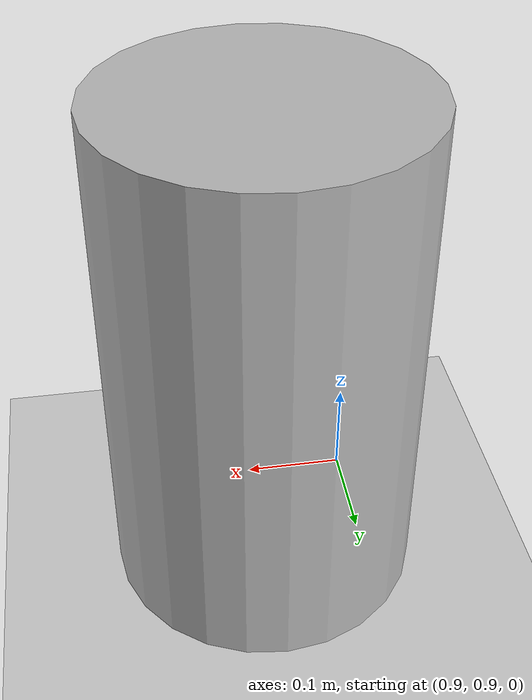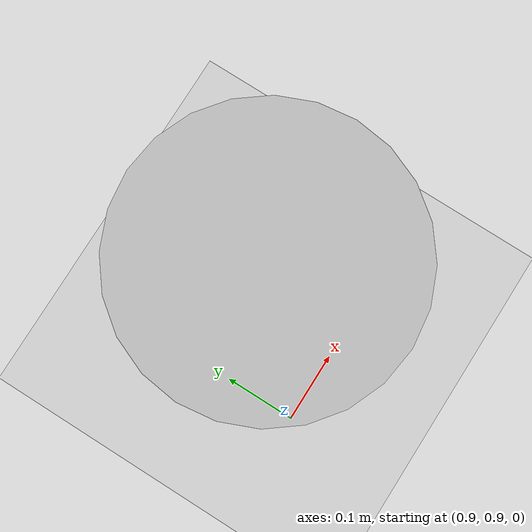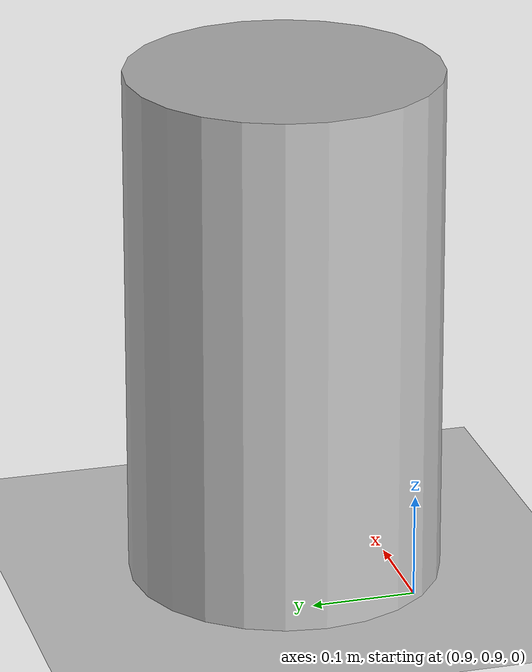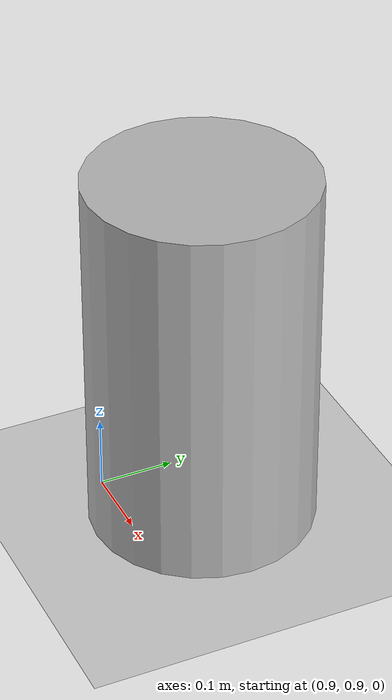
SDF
<sdf version='1.7'>
  <world name='default'>
    <light name='sun' type='directional'>
      <cast_shadows>1</cast_shadows>
      <pose>0 0 10 0 -0 0</pose>
      <diffuse>0.8 0.8 0.8 1</diffuse>
      <specular>0.2 0.2 0.2 1</specular>
      <attenuation>
        <range>1000</range>
        <constant>0.9</constant>
        <linear>0.01</linear>
        <quadratic>0.001</quadratic>
      </attenuation>
      <direction>-0.5 0.1 -0.9</direction>
      <spot>
        <inner_angle>0</inner_angle>
        <outer_angle>0</outer_angle>
        <falloff>0</falloff>
      </spot>
    </light>

    <model name='ground_plane'>
      <static>1</static>
      <link name='link'>
        <collision name='collision'>
          <geometry>
            <plane>
              <normal>0 0 1</normal>
              <size>100 100</size>
            </plane>
          </geometry>
          <surface>
            <contact>
              <collide_bitmask>65535</collide_bitmask>
              <ode/>
            </contact>
            <friction>
              <ode>
                <mu>100</mu>
                <mu2>50</mu2>
              </ode>
              <torsional>
                <ode/>
              </torsional>
            </friction>
            <bounce/>
          </surface>
          <max_contacts>10</max_contacts>
        </collision>
        <visual name='visual'>
          <cast_shadows>0</cast_shadows>
          <geometry>
            <plane>
              <normal>0 0 1</normal>
              <size>100 100</size>
            </plane>
          </geometry>
          <material>
            <script>
              <uri>file://media/materials/scripts/gazebo.material</uri>
              <name>Gazebo/Grey</name>
            </script>
          </material>
        </visual>
        <self_collide>0</self_collide>
        <enable_wind>0</enable_wind>
        <kinematic>0</kinematic>
      </link>
    </model>

    <gravity>0 0 -9.8</gravity>

    <physics type='ode'>
      <max_step_size>0.001</max_step_size>
      <real_time_factor>1</real_time_factor>
      <real_time_update_rate>1000</real_time_update_rate>
    </physics>

    <scene>
      <ambient>0.4 0.4 0.4 1</ambient>
      <background>0.7 0.7 0.7 1</background>
      <shadows>1</shadows>
    </scene>

    <model name='bud'>
      <static>1</static>
      <pose>1 1 0.25 0 0 0</pose>
      <link name='link'>
        <collision name='collision'>
          <geometry>
            <cylinder>
              <radius>0.15</radius>
              <length>0.5</length>
            </cylinder>
          </geometry>
        </collision>
        <visual name='visual'>
          <geometry>
            <cylinder>
              <radius>0.15</radius>
              <length>0.5</length>
            </cylinder>
          </geometry>
        </visual>
      </link>
    </model>
  </world>
</sdf>
